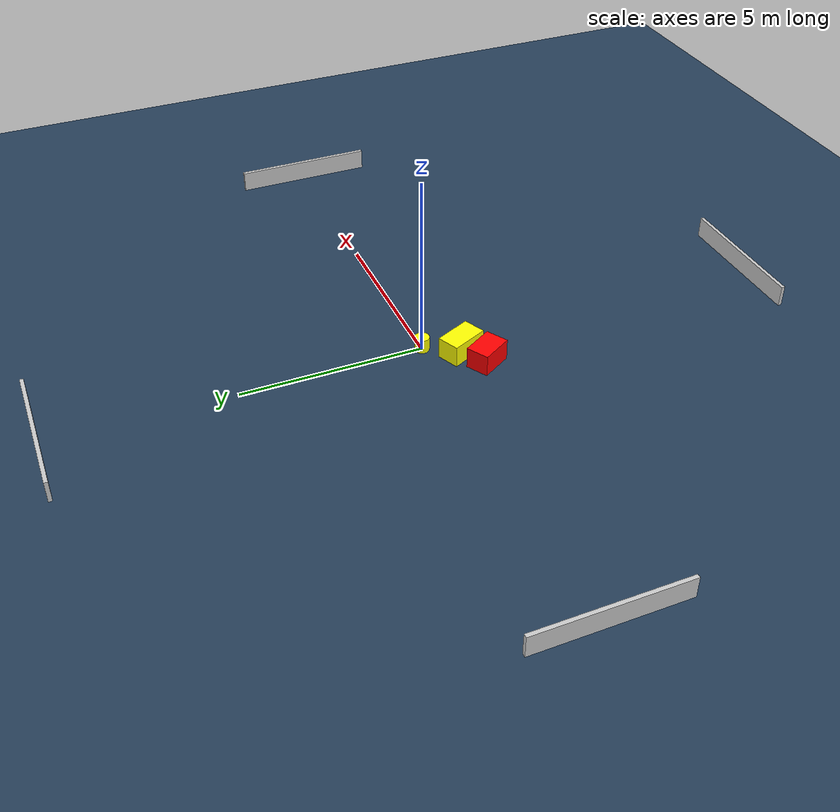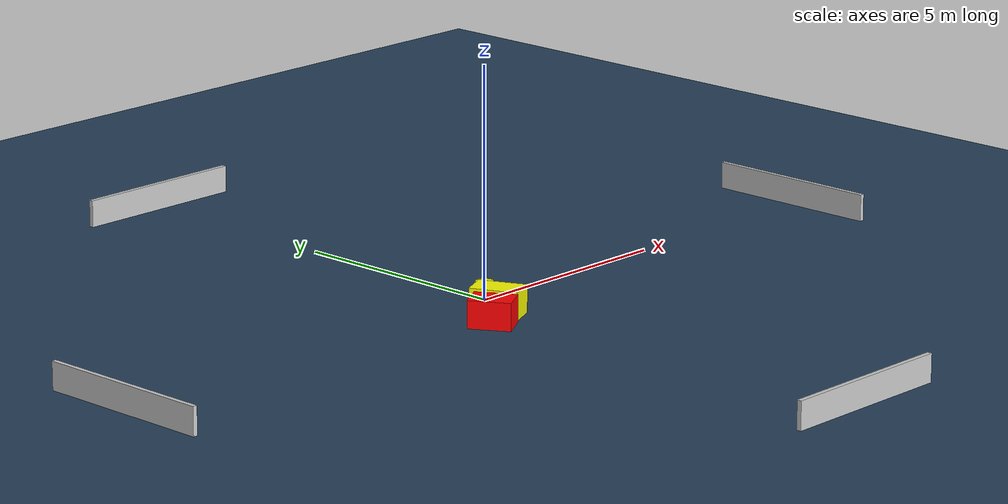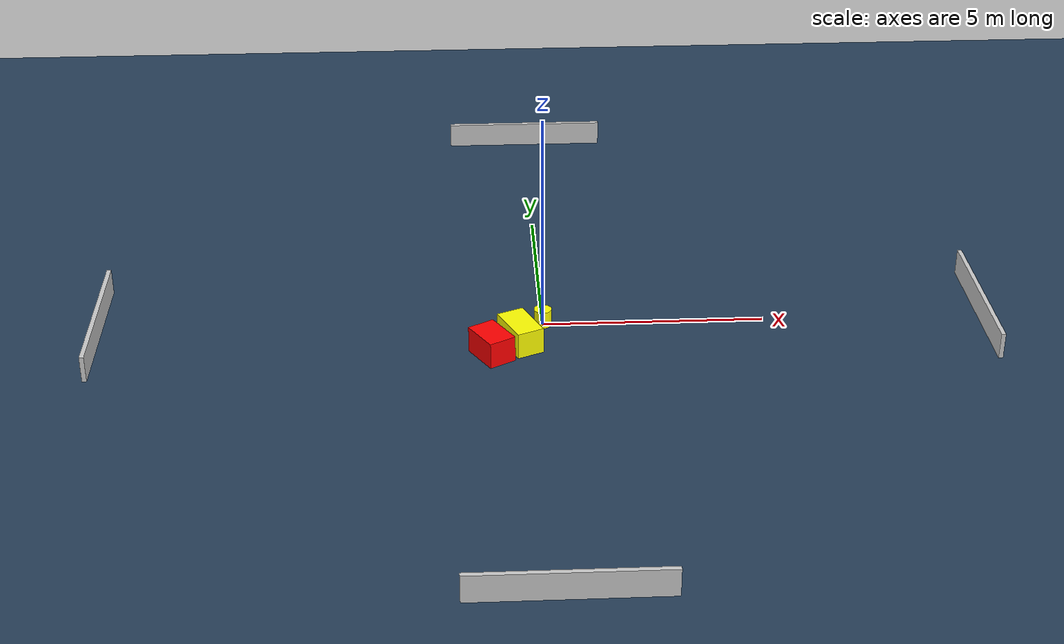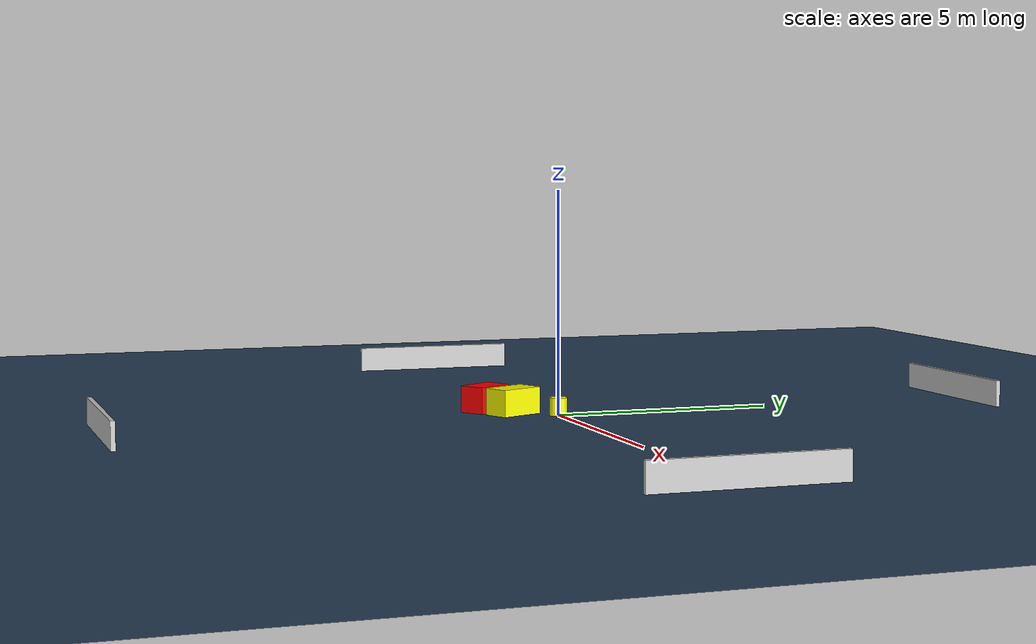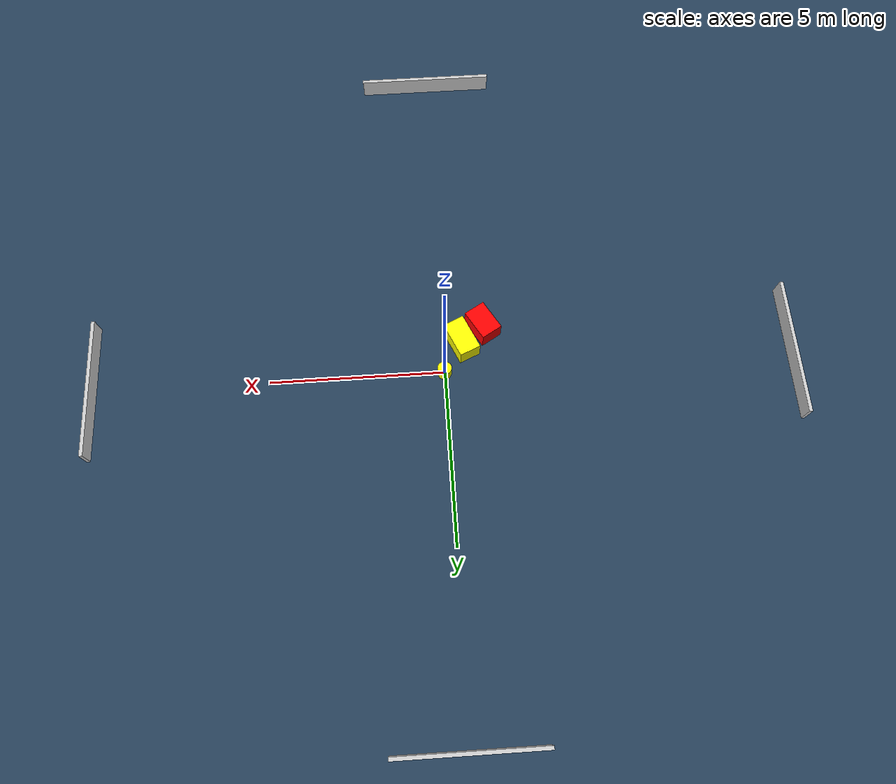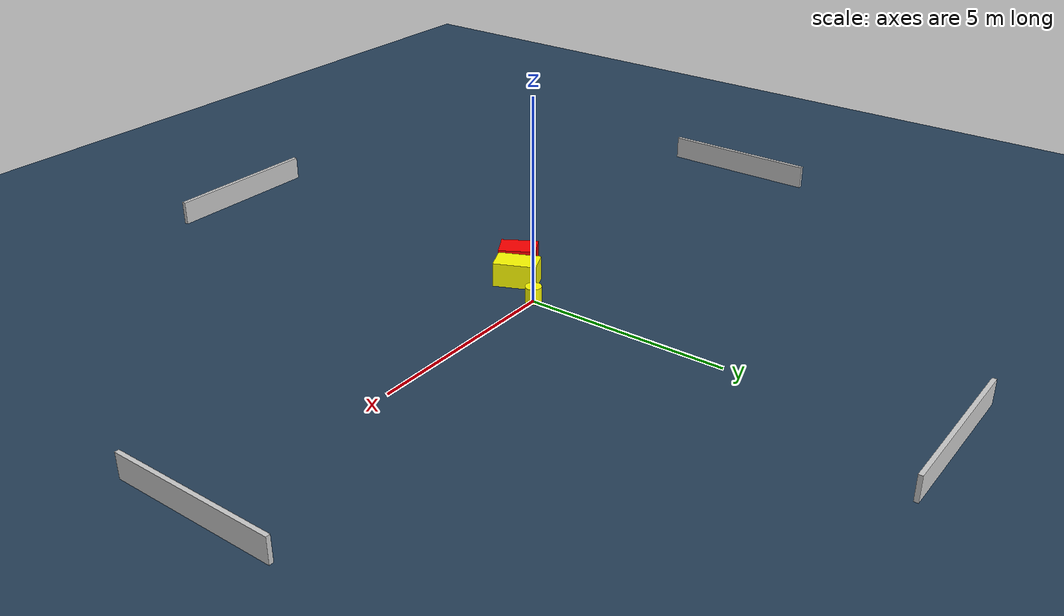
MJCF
<?xml version="1.0" ?>
<mujoco model="generated_environment">
  <option timestep="0.01" integrator="RK4" cone="elliptic"/>
  <default>
    <geom density="1"/>
  </default>
  <asset>
    <texture builtin="gradient" height="3072" name="skybox" rgb1="0.3 0.5 0.7" rgb2="0 0 0" type="skybox" width="512"/>
    <texture builtin="checker" height="300" name="groundplane" rgb1="0.2 0.3 0.4" rgb2="0.1 0.2 0.3" type="2d" width="300"/>
    <material name="groundplane" reflectance="0.2" texrepeat="5 5" texture="groundplane"/>
  </asset>
  <worldbody>
    <light dir="0 0 -1" directional="true" pos="0 0 1.5"/>
    <geom condim="3" friction="0.5 0.005 0.001" material="groundplane" name="floor" pos="0 0 0" size="0 0 0.05" type="plane"/>
    <body name="walls">
      <geom name="wall_1" condim="4" pos="-10.0 0.0 0.3" rgba="0.800000011920929 0.800000011920929 0.800000011920929 1.0" size="0.05 2.0 0.3" type="box"/>
      <geom name="wall_2" condim="4" pos="10.0 0.0 0.3" rgba="0.800000011920929 0.800000011920929 0.800000011920929 1.0" size="0.05 2.0 0.3" type="box"/>
      <geom name="wall_3" condim="4" pos="0.0 -10.0 0.3" rgba="0.800000011920929 0.800000011920929 0.800000011920929 1.0" size="2.0 0.05 0.3" type="box"/>
      <geom name="wall_4" condim="4" pos="0.0 10.0 0.3" rgba="0.800000011920929 0.800000011920929 0.800000011920929 1.0" size="2.0 0.05 0.3" type="box"/>
    </body>
    <body name="robot">
      <joint name="joint_x" type="slide" pos="0 0 0" axis="1 0 0"/>
      <joint name="joint_y" type="slide" pos="0 0 0" axis="0 1 0"/>
      <geom name="robot" type="cylinder" pos="0.0 0.0 0.2" size="0.2 0.2 0.0" mass="5.0" friction="1.0 0.005 0.0001" condim="4" rgba="1.0 1.0 0.0 1.0"/>
    </body>
    <body name="obstacle_1_movable">
      <geom name="obstacle_1_movable" condim="4" pos="-0.5451031222472398 -0.8876234314198309 0.3" euler="0 0 294.2254289857847" friction="0.0 0.005 0.001" rgba="1.0 1.0 0.0 1.0" size="0.5262442607273963 0.31453477073042346 0.3" type="box" mass="0.1"/>
      <joint type="free"/>
    </body>
    <body name="obstacle_2_static">
      <geom name="obstacle_2_static" condim="4" pos="-1.1901943679081113 -1.337846811371038 0.3" euler="0 0 30.578850170575222" friction="0.0 0.005 0.001" rgba="1.0 0.0 0.0 1.0" size="0.31888994503252327 0.4585880506729115 0.3" type="box"/>
    </body>
  </worldbody>
  <actuator>
    <motor name="actuator_x" joint="joint_x" gear="1" ctrlrange="-1 1"/>
    <motor name="actuator_y" joint="joint_y" gear="1" ctrlrange="-1 1"/>
  </actuator>
</mujoco>
